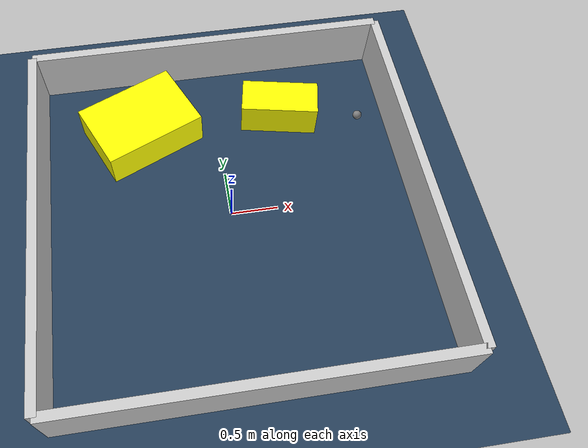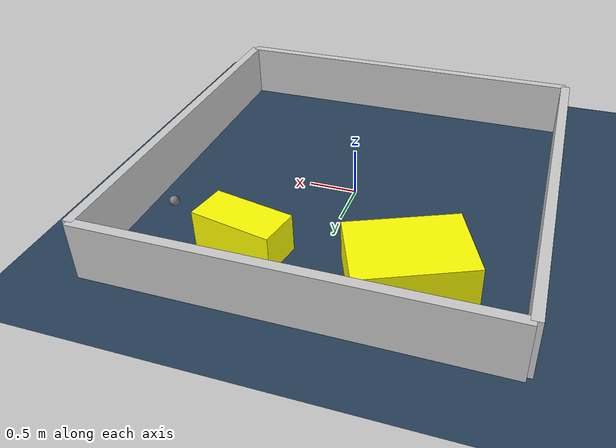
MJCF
<?xml version="1.0" ?>
<mujoco model="generated_environment">
  <option timestep="0.01" integrator="RK4" cone="elliptic"/>
  <default>
    <geom density="1"/>
  </default>
  <asset>
    <texture builtin="gradient" height="3072" rgb1="0.3 0.5 0.7" rgb2="0 0 0" type="skybox" width="512"/>
    <texture builtin="checker" height="300" mark="edge" markrgb="0.8 0.8 0.8" name="groundplane" rgb1="0.2 0.3 0.4" rgb2="0.1 0.2 0.3" type="2d" width="300"/>
    <material name="groundplane" reflectance="0.2" texrepeat="5 5" texture="groundplane" texuniform="true"/>
    <material name="robot" rgba="0.0 1.0 0.0 1"/>
  </asset>
  <worldbody>
    <light dir="0 0 -1" directional="true" pos="0 0 1.5"/>
    <geom condim="4" friction="1.0 0.005 0.001" material="groundplane" name="floor" size="0 0 0.05" type="plane"/>
    <body name="walls">
      <geom name="wall_1" condim="4" pos="-2.0 0.0 0.3" rgba="0.800000011920929 0.800000011920929 0.800000011920929 1.0" size="0.05 2.0 0.3" type="box"/>
      <geom name="wall_2" condim="4" pos="2.0 0.0 0.3" rgba="0.800000011920929 0.800000011920929 0.800000011920929 1.0" size="0.05 2.0 0.3" type="box"/>
      <geom name="wall_3" condim="4" pos="0.0 -2.0 0.3" rgba="0.800000011920929 0.800000011920929 0.800000011920929 1.0" size="2.0 0.05 0.3" type="box"/>
      <geom name="wall_4" condim="4" pos="0.0 2.0 0.3" rgba="0.800000011920929 0.800000011920929 0.800000011920929 1.0" size="2.0 0.05 0.3" type="box"/>
    </body>
    <body name="robot">
      <joint name="joint_x" type="slide" pos="0 0 0" axis="1 0 0"/>
      <joint name="joint_y" type="slide" pos="0 0 0" axis="0 1 0"/>
      <geom name="robot" type="sphere" pos="1.6025769504306115 0.9619706316588696 0.2" size="0.05" mass="5." friction="1.0 0.005 0.0001" condim="4"/>
      <site name="sensor_ball"/>
    </body>
    <body name="obstacle_1_movable">
      <geom name="obstacle_1_movable" condim="4" pos="-0.8665963264236449 1.1845352905436557 0.2" euler="0 0 113.85964250241618" friction="1.0 0.005 0.001" rgba="1 1 0 1" size="0.39818538449299445 0.5665956173219532 0.2" type="box" mass="0.1"/>
      <joint type="free"/>
    </body>
    <body name="obstacle_2_movable">
      <geom name="obstacle_2_movable" condim="4" pos="0.7317175215171274 1.2080370246669292 0.2" euler="0 0 168.6189244874143" friction="1.0 0.005 0.001" rgba="1 1 0 1" size="0.4273975464002423 0.2050456026051599 0.2" type="box" mass="0.1"/>
      <joint type="free"/>
    </body>
  </worldbody>
  <actuator>
    <motor name="actuator_x" joint="joint_x" gear="1" ctrlrange="-1 1"/>
    <motor name="actuator_y" joint="joint_y" gear="1" ctrlrange="-1 1"/>
  </actuator>
</mujoco>
